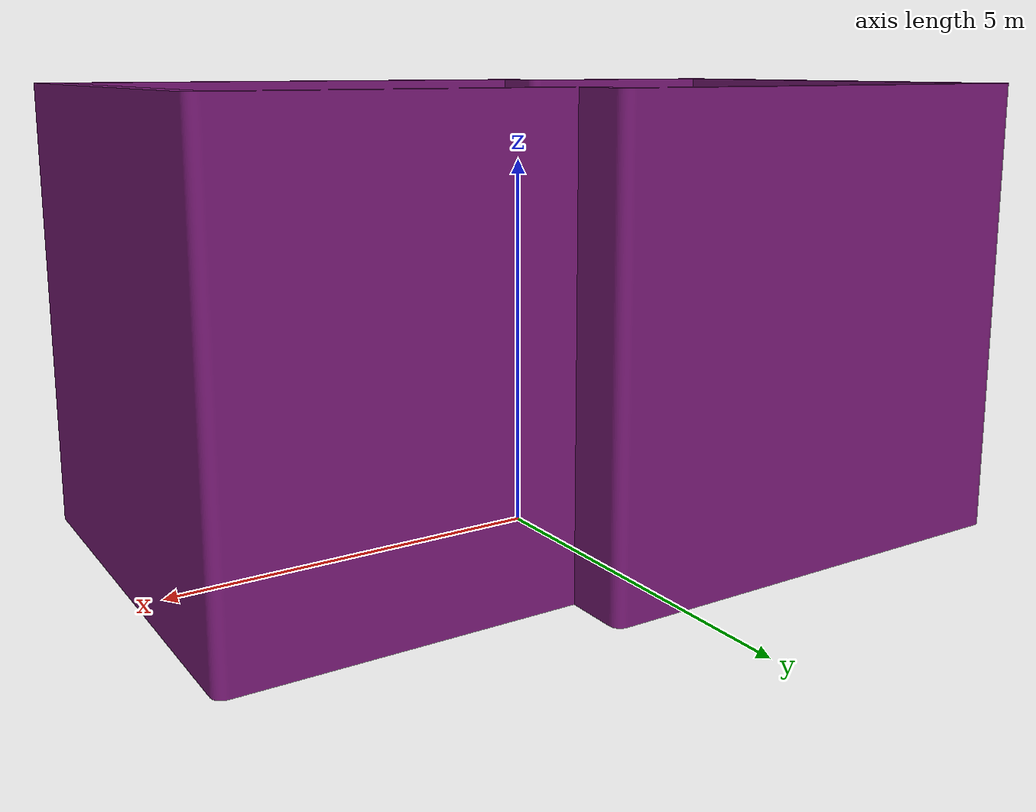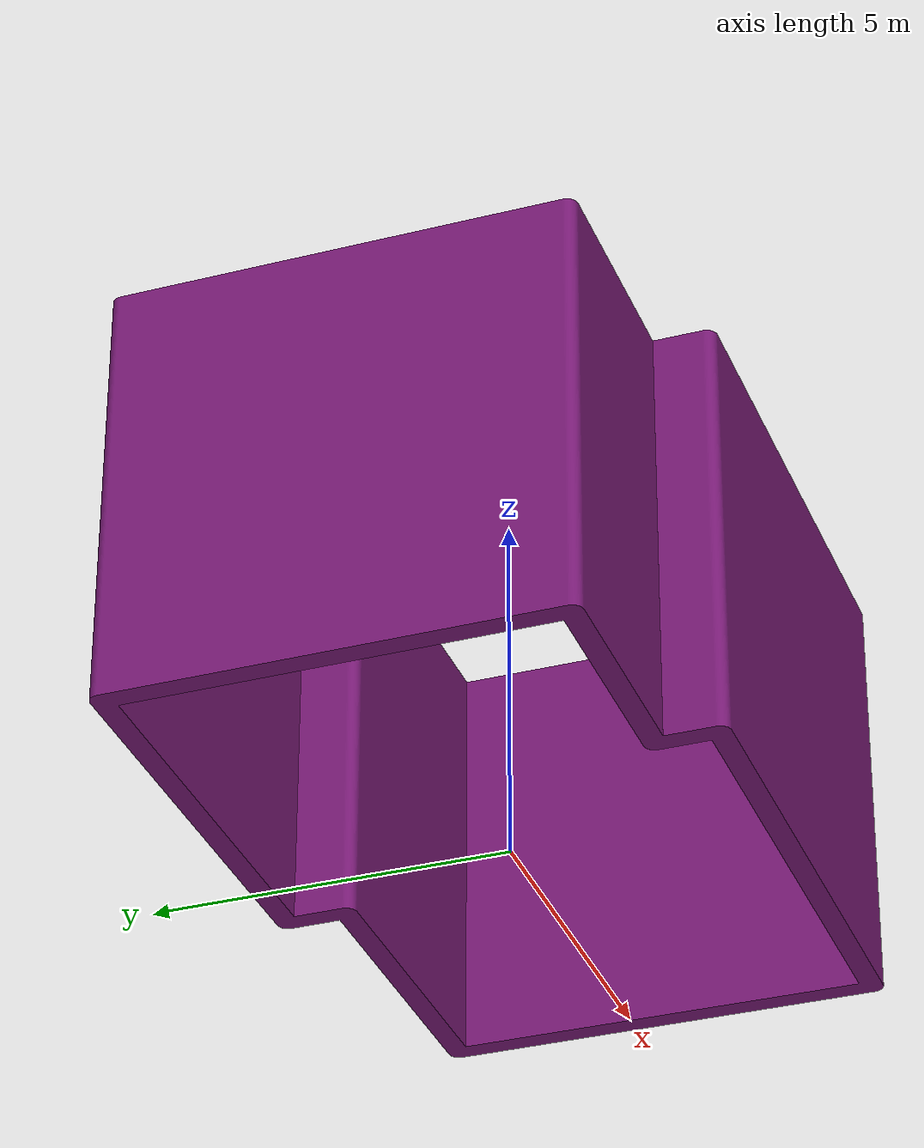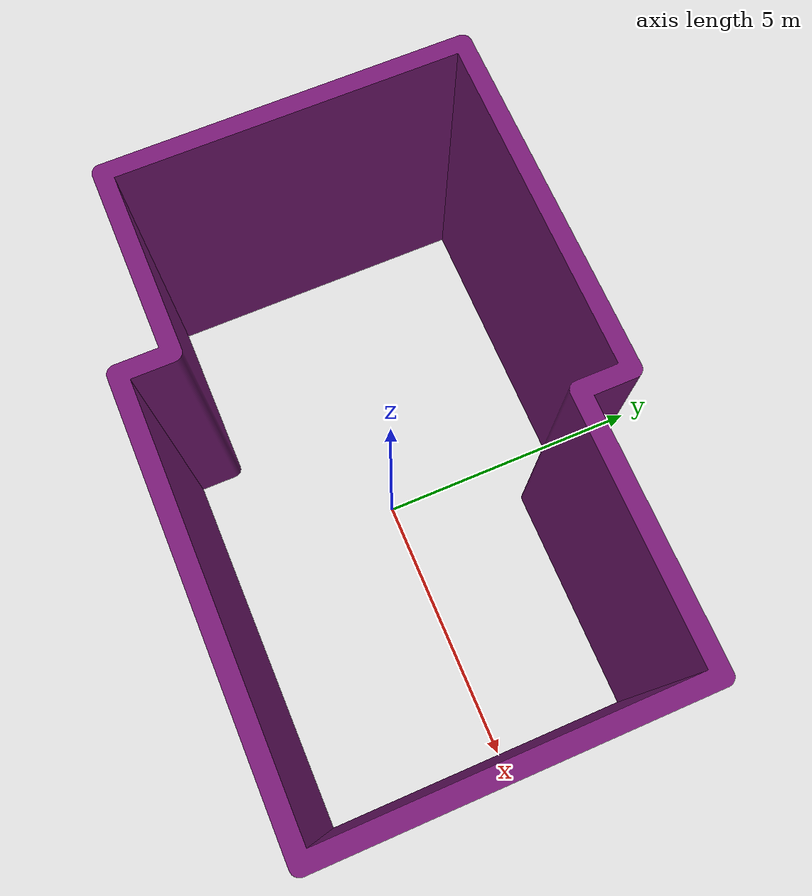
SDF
<?xml version="1.0" ?>
<sdf version="1.6">
  <model name="walls_2">
    <pose frame="">0 0 3 0 -0 0</pose>
    <static>1</static>
    <self_collide>0</self_collide>
    <allow_auto_disable>0</allow_auto_disable>
    <link name="mesh">
      <kinematic>0</kinematic>
      <gravity>1</gravity>
      <self_collide>0</self_collide>
      <collision name="collision">
        <geometry>
          <mesh>
            <uri>model://walls_2/meshes/mABNJKdTCR.stl</uri>
            <scale>1 1 1</scale>
          </mesh>
        </geometry>
        <pose frame="">-6.23217 -9.14834 -3 0 -0 0</pose>
        <max_contacts>20</max_contacts>
      </collision>
      <visual name="visual">
        <geometry>
          <mesh>
            <uri>model://walls_2/meshes/EzhHJXacII.stl</uri>
            <scale>1 1 1</scale>
          </mesh>
        </geometry>
        <material>
          <ambient>0.458824 0.0980392 0.45098 1</ambient>
          <diffuse>0.4588235294117647 0.09803921568627451 0.45098039215686275 1</diffuse>
        </material>
        <pose frame="">-6.23217 -9.14834 -3 0 -0 0</pose>
        <cast_shadows>1</cast_shadows>
        <transparency>0.0</transparency>
      </visual>
      <pose frame="">0 0 0 0 -0 0</pose>
    </link>
  </model>
</sdf>
